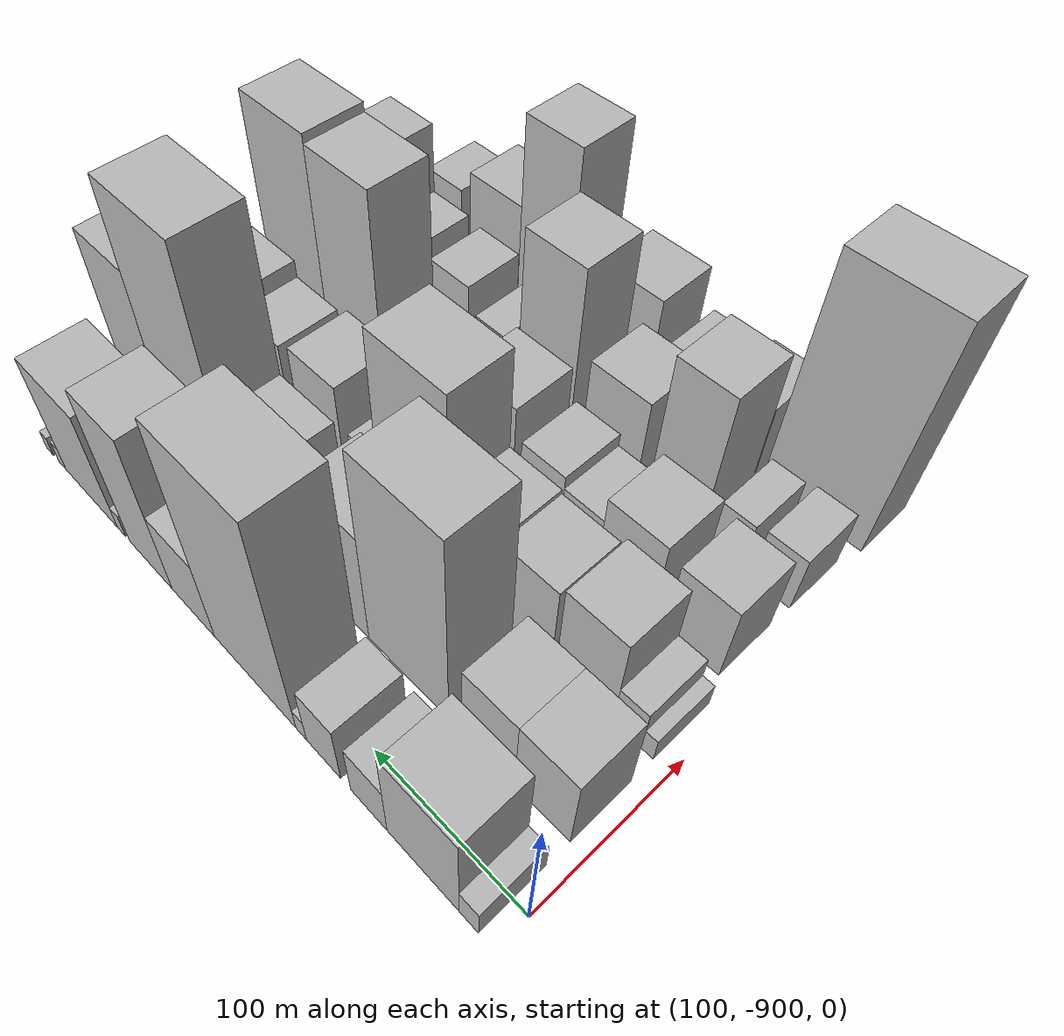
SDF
<sdf version="1.6">
 <world name="default">
  <model name="building_1">
   <static>1</static>
   <pose>100.0000 -884.0675 0 0.000000 0.000000 0.000000</pose>
   <link name="link">
    <pose>0 0 12.00 0 0 0</pose>
    <collision name="collision"><geometry><box><size>40.0000 11.8650 24.0000</size></box></geometry></collision>
    <visual name="visual">
     <cast_shadows>0</cast_shadows>
     <geometry><box><size>40.0000 11.8650 24.0000</size></box></geometry>
     <material>
      <script>
       <uri>model://HANNAS_wall/materials/scripts</uri>
       <uri>model://HANNAS_wall/materials/textures</uri>
       <name>vrc/HANNAS_wall</name>
      </script>
     </material>
    </visual>
   </link>
  </model>
  <model name="building_2">
   <static>1</static>
   <pose>100.0000 -854.9313 0 0.000000 0.000000 0.000000</pose>
   <link name="link">
    <pose>0 0 39.00 0 0 0</pose>
    <collision name="collision"><geometry><box><size>40.0000 46.4073 78.0000</size></box></geometry></collision>
    <visual name="visual">
     <cast_shadows>0</cast_shadows>
     <geometry><box><size>40.0000 46.4073 78.0000</size></box></geometry>
     <material>
      <script>
       <uri>model://HANNAS_wall/materials/scripts</uri>
       <uri>model://HANNAS_wall/materials/textures</uri>
       <name>vrc/HANNAS_wall</name>
      </script>
     </material>
    </visual>
   </link>
  </model>
  <model name="building_3">
   <static>1</static>
   <pose>100.0000 -819.1503 0 0.000000 0.000000 0.000000</pose>
   <link name="link">
    <pose>0 0 21.00 0 0 0</pose>
    <collision name="collision"><geometry><box><size>40.0000 25.1547 42.0000</size></box></geometry></collision>
    <visual name="visual">
     <cast_shadows>0</cast_shadows>
     <geometry><box><size>40.0000 25.1547 42.0000</size></box></geometry>
     <material>
      <script>
       <uri>model://HANNAS_wall/materials/scripts</uri>
       <uri>model://HANNAS_wall/materials/textures</uri>
       <name>vrc/HANNAS_wall</name>
      </script>
     </material>
    </visual>
   </link>
  </model>
  <model name="building_4">
   <static>1</static>
   <pose>100.0000 -787.0632 0 0.000000 0.000000 0.000000</pose>
   <link name="link">
    <pose>0 0 24.00 0 0 0</pose>
    <collision name="collision"><geometry><box><size>40.0000 25.0196 48.0000</size></box></geometry></collision>
    <visual name="visual">
     <cast_shadows>0</cast_shadows>
     <geometry><box><size>40.0000 25.0196 48.0000</size></box></geometry>
     <material>
      <script>
       <uri>model://HANNAS_wall/materials/scripts</uri>
       <uri>model://HANNAS_wall/materials/textures</uri>
       <name>vrc/HANNAS_wall</name>
      </script>
     </material>
    </visual>
   </link>
  </model>
  <model name="building_5">
   <static>1</static>
   <pose>100.0000 -770.5247 0 0.000000 0.000000 0.000000</pose>
   <link name="link">
    <pose>0 0 9.00 0 0 0</pose>
    <collision name="collision"><geometry><box><size>40.0000 8.0573 18.0000</size></box></geometry></collision>
    <visual name="visual">
     <cast_shadows>0</cast_shadows>
     <geometry><box><size>40.0000 8.0573 18.0000</size></box></geometry>
     <material>
      <script>
       <uri>model://HANNAS_wall/materials/scripts</uri>
       <uri>model://HANNAS_wall/materials/textures</uri>
       <name>vrc/HANNAS_wall</name>
      </script>
     </material>
    </visual>
   </link>
  </model>
  <model name="building_6">
   <static>1</static>
   <pose>100.0000 -733.8526 0 0.000000 0.000000 0.000000</pose>
   <link name="link">
    <pose>0 0 84.00 0 0 0</pose>
    <collision name="collision"><geometry><box><size>40.0000 65.2870 168.0000</size></box></geometry></collision>
    <visual name="visual">
     <cast_shadows>0</cast_shadows>
     <geometry><box><size>40.0000 65.2870 168.0000</size></box></geometry>
     <material>
      <script>
       <uri>model://HANNAS_wall/materials/scripts</uri>
       <uri>model://HANNAS_wall/materials/textures</uri>
       <name>vrc/HANNAS_wall</name>
      </script>
     </material>
    </visual>
   </link>
  </model>
  <model name="building_7">
   <static>1</static>
   <pose>100.0000 -682.5342 0 0.000000 0.000000 0.000000</pose>
   <link name="link">
    <pose>0 0 31.50 0 0 0</pose>
    <collision name="collision"><geometry><box><size>40.0000 37.3498 63.0000</size></box></geometry></collision>
    <visual name="visual">
     <cast_shadows>0</cast_shadows>
     <geometry><box><size>40.0000 37.3498 63.0000</size></box></geometry>
     <material>
      <script>
       <uri>model://HANNAS_wall/materials/scripts</uri>
       <uri>model://HANNAS_wall/materials/textures</uri>
       <name>vrc/HANNAS_wall</name>
      </script>
     </material>
    </visual>
   </link>
  </model>
  <model name="building_8">
   <static>1</static>
   <pose>100.0000 -643.9505 0 0.000000 0.000000 0.000000</pose>
   <link name="link">
    <pose>0 0 60.00 0 0 0</pose>
    <collision name="collision"><geometry><box><size>40.0000 39.8175 120.0000</size></box></geometry></collision>
    <visual name="visual">
     <cast_shadows>0</cast_shadows>
     <geometry><box><size>40.0000 39.8175 120.0000</size></box></geometry>
     <material>
      <script>
       <uri>model://HANNAS_wall/materials/scripts</uri>
       <uri>model://HANNAS_wall/materials/textures</uri>
       <name>vrc/HANNAS_wall</name>
      </script>
     </material>
    </visual>
   </link>
  </model>
  <model name="building_9">
   <static>1</static>
   <pose>100.0000 -616.0592 0 0.000000 0.000000 0.000000</pose>
   <link name="link">
    <pose>0 0 9.00 0 0 0</pose>
    <collision name="collision"><geometry><box><size>40.0000 7.9652 18.0000</size></box></geometry></collision>
    <visual name="visual">
     <cast_shadows>0</cast_shadows>
     <geometry><box><size>40.0000 7.9652 18.0000</size></box></geometry>
     <material>
      <script>
       <uri>model://HANNAS_wall/materials/scripts</uri>
       <uri>model://HANNAS_wall/materials/textures</uri>
       <name>vrc/HANNAS_wall</name>
      </script>
     </material>
    </visual>
   </link>
  </model>
  <model name="building_10">
   <static>1</static>
   <pose>100.0000 -585.8317 0 0.000000 0.000000 0.000000</pose>
   <link name="link">
    <pose>0 0 45.00 0 0 0</pose>
    <collision name="collision"><geometry><box><size>40.0000 52.4896 90.0000</size></box></geometry></collision>
    <visual name="visual">
     <cast_shadows>0</cast_shadows>
     <geometry><box><size>40.0000 52.4896 90.0000</size></box></geometry>
     <material>
      <script>
       <uri>model://HANNAS_wall/materials/scripts</uri>
       <uri>model://HANNAS_wall/materials/textures</uri>
       <name>vrc/HANNAS_wall</name>
      </script>
     </material>
    </visual>
   </link>
  </model>
  <model name="building_11">
   <static>1</static>
   <pose>100.0000 -555.8042 0 0.000000 0.000000 0.000000</pose>
   <link name="link">
    <pose>0 0 9.00 0 0 0</pose>
    <collision name="collision"><geometry><box><size>40.0000 7.5655 18.0000</size></box></geometry></collision>
    <visual name="visual">
     <cast_shadows>0</cast_shadows>
     <geometry><box><size>40.0000 7.5655 18.0000</size></box></geometry>
     <material>
      <script>
       <uri>model://HANNAS_wall/materials/scripts</uri>
       <uri>model://HANNAS_wall/materials/textures</uri>
       <name>vrc/HANNAS_wall</name>
      </script>
     </material>
    </visual>
   </link>
  </model>
  <model name="building_12">
   <static>1</static>
   <pose>100.0000 -542.4113 0 0.000000 0.000000 0.000000</pose>
   <link name="link">
    <pose>0 0 7.50 0 0 0</pose>
    <collision name="collision"><geometry><box><size>40.0000 7.2202 15.0000</size></box></geometry></collision>
    <visual name="visual">
     <cast_shadows>0</cast_shadows>
     <geometry><box><size>40.0000 7.2202 15.0000</size></box></geometry>
     <material>
      <script>
       <uri>model://HANNAS_wall/materials/scripts</uri>
       <uri>model://HANNAS_wall/materials/textures</uri>
       <name>vrc/HANNAS_wall</name>
      </script>
     </material>
    </visual>
   </link>
  </model>
  <model name="building_55">
   <static>1</static>
   <pose>155.0000 -872.7135 0 0.000000 0.000000 0.000000</pose>
   <link name="link">
    <pose>0 0 30.00 0 0 0</pose>
    <collision name="collision"><geometry><box><size>40.0000 34.5731 60.0000</size></box></geometry></collision>
    <visual name="visual">
     <cast_shadows>0</cast_shadows>
     <geometry><box><size>40.0000 34.5731 60.0000</size></box></geometry>
     <material>
      <script>
       <uri>model://HANNAS_wall/materials/scripts</uri>
       <uri>model://HANNAS_wall/materials/textures</uri>
       <name>vrc/HANNAS_wall</name>
      </script>
     </material>
    </visual>
   </link>
  </model>
  <model name="building_56">
   <static>1</static>
   <pose>155.0000 -838.1714 0 0.000000 0.000000 0.000000</pose>
   <link name="link">
    <pose>0 0 30.00 0 0 0</pose>
    <collision name="collision"><geometry><box><size>40.0000 34.5110 60.0000</size></box></geometry></collision>
    <visual name="visual">
     <cast_shadows>0</cast_shadows>
     <geometry><box><size>40.0000 34.5110 60.0000</size></box></geometry>
     <material>
      <script>
       <uri>model://HANNAS_wall/materials/scripts</uri>
       <uri>model://HANNAS_wall/materials/textures</uri>
       <name>vrc/HANNAS_wall</name>
      </script>
     </material>
    </visual>
   </link>
  </model>
  <model name="building_57">
   <static>1</static>
   <pose>155.0000 -782.7955 0 0.000000 0.000000 0.000000</pose>
   <link name="link">
    <pose>0 0 75.00 0 0 0</pose>
    <collision name="collision"><geometry><box><size>40.0000 58.2408 150.0000</size></box></geometry></collision>
    <visual name="visual">
     <cast_shadows>0</cast_shadows>
     <geometry><box><size>40.0000 58.2408 150.0000</size></box></geometry>
     <material>
      <script>
       <uri>model://HANNAS_wall/materials/scripts</uri>
       <uri>model://HANNAS_wall/materials/textures</uri>
       <name>vrc/HANNAS_wall</name>
      </script>
     </material>
    </visual>
   </link>
  </model>
  <model name="building_58">
   <static>1</static>
   <pose>155.0000 -731.3348 0 0.000000 0.000000 0.000000</pose>
   <link name="link">
    <pose>0 0 43.50 0 0 0</pose>
    <collision name="collision"><geometry><box><size>40.0000 44.6805 87.0000</size></box></geometry></collision>
    <visual name="visual">
     <cast_shadows>0</cast_shadows>
     <geometry><box><size>40.0000 44.6805 87.0000</size></box></geometry>
     <material>
      <script>
       <uri>model://HANNAS_wall/materials/scripts</uri>
       <uri>model://HANNAS_wall/materials/textures</uri>
       <name>vrc/HANNAS_wall</name>
      </script>
     </material>
    </visual>
   </link>
  </model>
  <model name="building_59">
   <static>1</static>
   <pose>155.0000 -700.2722 0 0.000000 0.000000 0.000000</pose>
   <link name="link">
    <pose>0 0 16.50 0 0 0</pose>
    <collision name="collision"><geometry><box><size>40.0000 17.4448 33.0000</size></box></geometry></collision>
    <visual name="visual">
     <cast_shadows>0</cast_shadows>
     <geometry><box><size>40.0000 17.4448 33.0000</size></box></geometry>
     <material>
      <script>
       <uri>model://HANNAS_wall/materials/scripts</uri>
       <uri>model://HANNAS_wall/materials/textures</uri>
       <name>vrc/HANNAS_wall</name>
      </script>
     </material>
    </visual>
   </link>
  </model>
  <model name="building_60">
   <static>1</static>
   <pose>155.0000 -666.0928 0 0.000000 0.000000 0.000000</pose>
   <link name="link">
    <pose>0 0 37.50 0 0 0</pose>
    <collision name="collision"><geometry><box><size>40.0000 42.9139 75.0000</size></box></geometry></collision>
    <visual name="visual">
     <cast_shadows>0</cast_shadows>
     <geometry><box><size>40.0000 42.9139 75.0000</size></box></geometry>
     <material>
      <script>
       <uri>model://HANNAS_wall/materials/scripts</uri>
       <uri>model://HANNAS_wall/materials/textures</uri>
       <name>vrc/HANNAS_wall</name>
      </script>
     </material>
    </visual>
   </link>
  </model>
  <model name="building_61">
   <static>1</static>
   <pose>155.0000 -614.7617 0 0.000000 0.000000 0.000000</pose>
   <link name="link">
    <pose>0 0 93.00 0 0 0</pose>
    <collision name="collision"><geometry><box><size>40.0000 59.7484 186.0000</size></box></geometry></collision>
    <visual name="visual">
     <cast_shadows>0</cast_shadows>
     <geometry><box><size>40.0000 59.7484 186.0000</size></box></geometry>
     <material>
      <script>
       <uri>model://HANNAS_wall/materials/scripts</uri>
       <uri>model://HANNAS_wall/materials/textures</uri>
       <name>vrc/HANNAS_wall</name>
      </script>
     </material>
    </visual>
   </link>
  </model>
  <model name="building_62">
   <static>1</static>
   <pose>155.0000 -563.2195 0 0.000000 0.000000 0.000000</pose>
   <link name="link">
    <pose>0 0 64.50 0 0 0</pose>
    <collision name="collision"><geometry><box><size>40.0000 43.3360 129.0000</size></box></geometry></collision>
    <visual name="visual">
     <cast_shadows>0</cast_shadows>
     <geometry><box><size>40.0000 43.3360 129.0000</size></box></geometry>
     <material>
      <script>
       <uri>model://HANNAS_wall/materials/scripts</uri>
       <uri>model://HANNAS_wall/materials/textures</uri>
       <name>vrc/HANNAS_wall</name>
      </script>
     </material>
    </visual>
   </link>
  </model>
  <model name="building_109">
   <static>1</static>
   <pose>210.0000 -886.3223 0 0.000000 0.000000 0.000000</pose>
   <link name="link">
    <pose>0 0 9.00 0 0 0</pose>
    <collision name="collision"><geometry><box><size>40.0000 7.3554 18.0000</size></box></geometry></collision>
    <visual name="visual">
     <cast_shadows>0</cast_shadows>
     <geometry><box><size>40.0000 7.3554 18.0000</size></box></geometry>
     <material>
      <script>
       <uri>model://HANNAS_wall/materials/scripts</uri>
       <uri>model://HANNAS_wall/materials/textures</uri>
       <name>vrc/HANNAS_wall</name>
      </script>
     </material>
    </visual>
   </link>
  </model>
  <model name="building_110">
   <static>1</static>
   <pose>210.0000 -873.9522 0 0.000000 0.000000 0.000000</pose>
   <link name="link">
    <pose>0 0 16.50 0 0 0</pose>
    <collision name="collision"><geometry><box><size>40.0000 17.3848 33.0000</size></box></geometry></collision>
    <visual name="visual">
     <cast_shadows>0</cast_shadows>
     <geometry><box><size>40.0000 17.3848 33.0000</size></box></geometry>
     <material>
      <script>
       <uri>model://HANNAS_wall/materials/scripts</uri>
       <uri>model://HANNAS_wall/materials/textures</uri>
       <name>vrc/HANNAS_wall</name>
      </script>
     </material>
    </visual>
   </link>
  </model>
  <model name="building_111">
   <static>1</static>
   <pose>210.0000 -846.6720 0 0.000000 0.000000 0.000000</pose>
   <link name="link">
    <pose>0 0 36.00 0 0 0</pose>
    <collision name="collision"><geometry><box><size>40.0000 37.1756 72.0000</size></box></geometry></collision>
    <visual name="visual">
     <cast_shadows>0</cast_shadows>
     <geometry><box><size>40.0000 37.1756 72.0000</size></box></geometry>
     <material>
      <script>
       <uri>model://HANNAS_wall/materials/scripts</uri>
       <uri>model://HANNAS_wall/materials/textures</uri>
       <name>vrc/HANNAS_wall</name>
      </script>
     </material>
    </visual>
   </link>
  </model>
  <model name="building_112">
   <static>1</static>
   <pose>210.0000 -806.5384 0 0.000000 0.000000 0.000000</pose>
   <link name="link">
    <pose>0 0 33.00 0 0 0</pose>
    <collision name="collision"><geometry><box><size>40.0000 37.0917 66.0000</size></box></geometry></collision>
    <visual name="visual">
     <cast_shadows>0</cast_shadows>
     <geometry><box><size>40.0000 37.0917 66.0000</size></box></geometry>
     <material>
      <script>
       <uri>model://HANNAS_wall/materials/scripts</uri>
       <uri>model://HANNAS_wall/materials/textures</uri>
       <name>vrc/HANNAS_wall</name>
      </script>
     </material>
    </visual>
   </link>
  </model>
  <model name="building_113">
   <static>1</static>
   <pose>210.0000 -770.4524 0 0.000000 0.000000 0.000000</pose>
   <link name="link">
    <pose>0 0 34.50 0 0 0</pose>
    <collision name="collision"><geometry><box><size>40.0000 35.0803 69.0000</size></box></geometry></collision>
    <visual name="visual">
     <cast_shadows>0</cast_shadows>
     <geometry><box><size>40.0000 35.0803 69.0000</size></box></geometry>
     <material>
      <script>
       <uri>model://HANNAS_wall/materials/scripts</uri>
       <uri>model://HANNAS_wall/materials/textures</uri>
       <name>vrc/HANNAS_wall</name>
      </script>
     </material>
    </visual>
   </link>
  </model>
  <model name="building_114">
   <static>1</static>
   <pose>210.0000 -725.4736 0 0.000000 0.000000 0.000000</pose>
   <link name="link">
    <pose>0 0 69.00 0 0 0</pose>
    <collision name="collision"><geometry><box><size>40.0000 54.8773 138.0000</size></box></geometry></collision>
    <visual name="visual">
     <cast_shadows>0</cast_shadows>
     <geometry><box><size>40.0000 54.8773 138.0000</size></box></geometry>
     <material>
      <script>
       <uri>model://HANNAS_wall/materials/scripts</uri>
       <uri>model://HANNAS_wall/materials/textures</uri>
       <name>vrc/HANNAS_wall</name>
      </script>
     </material>
    </visual>
   </link>
  </model>
  <model name="building_115">
   <static>1</static>
   <pose>210.0000 -686.5133 0 0.000000 0.000000 0.000000</pose>
   <link name="link">
    <pose>0 0 21.00 0 0 0</pose>
    <collision name="collision"><geometry><box><size>40.0000 23.0432 42.0000</size></box></geometry></collision>
    <visual name="visual">
     <cast_shadows>0</cast_shadows>
     <geometry><box><size>40.0000 23.0432 42.0000</size></box></geometry>
     <material>
      <script>
       <uri>model://HANNAS_wall/materials/scripts</uri>
       <uri>model://HANNAS_wall/materials/textures</uri>
       <name>vrc/HANNAS_wall</name>
      </script>
     </material>
    </visual>
   </link>
  </model>
  <model name="building_116">
   <static>1</static>
   <pose>210.0000 -648.8046 0 0.000000 0.000000 0.000000</pose>
   <link name="link">
    <pose>0 0 36.00 0 0 0</pose>
    <collision name="collision"><geometry><box><size>40.0000 38.3742 72.0000</size></box></geometry></collision>
    <visual name="visual">
     <cast_shadows>0</cast_shadows>
     <geometry><box><size>40.0000 38.3742 72.0000</size></box></geometry>
     <material>
      <script>
       <uri>model://HANNAS_wall/materials/scripts</uri>
       <uri>model://HANNAS_wall/materials/textures</uri>
       <name>vrc/HANNAS_wall</name>
      </script>
     </material>
    </visual>
   </link>
  </model>
  <model name="building_117">
   <static>1</static>
   <pose>210.0000 -602.9637 0 0.000000 0.000000 0.000000</pose>
   <link name="link">
    <pose>0 0 33.00 0 0 0</pose>
    <collision name="collision"><geometry><box><size>40.0000 35.3075 66.0000</size></box></geometry></collision>
    <visual name="visual">
     <cast_shadows>0</cast_shadows>
     <geometry><box><size>40.0000 35.3075 66.0000</size></box></geometry>
     <material>
      <script>
       <uri>model://HANNAS_wall/materials/scripts</uri>
       <uri>model://HANNAS_wall/materials/textures</uri>
       <name>vrc/HANNAS_wall</name>
      </script>
     </material>
    </visual>
   </link>
  </model>
  <model name="building_118">
   <static>1</static>
   <pose>210.0000 -562.2938 0 0.000000 0.000000 0.000000</pose>
   <link name="link">
    <pose>0 0 39.00 0 0 0</pose>
    <collision name="collision"><geometry><box><size>40.0000 46.0322 78.0000</size></box></geometry></collision>
    <visual name="visual">
     <cast_shadows>0</cast_shadows>
     <geometry><box><size>40.0000 46.0322 78.0000</size></box></geometry>
     <material>
      <script>
       <uri>model://HANNAS_wall/materials/scripts</uri>
       <uri>model://HANNAS_wall/materials/textures</uri>
       <name>vrc/HANNAS_wall</name>
      </script>
     </material>
    </visual>
   </link>
  </model>
  <model name="building_159">
   <static>1</static>
   <pose>265.0000 -866.9150 0 0.000000 0.000000 0.000000</pose>
   <link name="link">
    <pose>0 0 28.50 0 0 0</pose>
    <collision name="collision"><geometry><box><size>40.0000 34.1699 57.0000</size></box></geometry></collision>
    <visual name="visual">
     <cast_shadows>0</cast_shadows>
     <geometry><box><size>40.0000 34.1699 57.0000</size></box></geometry>
     <material>
      <script>
       <uri>model://HANNAS_wall/materials/scripts</uri>
       <uri>model://HANNAS_wall/materials/textures</uri>
       <name>vrc/HANNAS_wall</name>
      </script>
     </material>
    </visual>
   </link>
  </model>
  <model name="building_160">
   <static>1</static>
   <pose>265.0000 -845.6897 0 0.000000 0.000000 0.000000</pose>
   <link name="link">
    <pose>0 0 9.00 0 0 0</pose>
    <collision name="collision"><geometry><box><size>40.0000 8.2808 18.0000</size></box></geometry></collision>
    <visual name="visual">
     <cast_shadows>0</cast_shadows>
     <geometry><box><size>40.0000 8.2808 18.0000</size></box></geometry>
     <material>
      <script>
       <uri>model://HANNAS_wall/materials/scripts</uri>
       <uri>model://HANNAS_wall/materials/textures</uri>
       <name>vrc/HANNAS_wall</name>
      </script>
     </material>
    </visual>
   </link>
  </model>
  <model name="building_161">
   <static>1</static>
   <pose>265.0000 -822.6998 0 0.000000 0.000000 0.000000</pose>
   <link name="link">
    <pose>0 0 31.50 0 0 0</pose>
    <collision name="collision"><geometry><box><size>40.0000 37.6989 63.0000</size></box></geometry></collision>
    <visual name="visual">
     <cast_shadows>0</cast_shadows>
     <geometry><box><size>40.0000 37.6989 63.0000</size></box></geometry>
     <material>
      <script>
       <uri>model://HANNAS_wall/materials/scripts</uri>
       <uri>model://HANNAS_wall/materials/textures</uri>
       <name>vrc/HANNAS_wall</name>
      </script>
     </material>
    </visual>
   </link>
  </model>
  <model name="building_162">
   <static>1</static>
   <pose>265.0000 -790.4705 0 0.000000 0.000000 0.000000</pose>
   <link name="link">
    <pose>0 0 22.50 0 0 0</pose>
    <collision name="collision"><geometry><box><size>40.0000 26.7598 45.0000</size></box></geometry></collision>
    <visual name="visual">
     <cast_shadows>0</cast_shadows>
     <geometry><box><size>40.0000 26.7598 45.0000</size></box></geometry>
     <material>
      <script>
       <uri>model://HANNAS_wall/materials/scripts</uri>
       <uri>model://HANNAS_wall/materials/textures</uri>
       <name>vrc/HANNAS_wall</name>
      </script>
     </material>
    </visual>
   </link>
  </model>
  <model name="building_163">
   <static>1</static>
   <pose>265.0000 -762.0236 0 0.000000 0.000000 0.000000</pose>
   <link name="link">
    <pose>0 0 27.00 0 0 0</pose>
    <collision name="collision"><geometry><box><size>40.0000 30.1339 54.0000</size></box></geometry></collision>
    <visual name="visual">
     <cast_shadows>0</cast_shadows>
     <geometry><box><size>40.0000 30.1339 54.0000</size></box></geometry>
     <material>
      <script>
       <uri>model://HANNAS_wall/materials/scripts</uri>
       <uri>model://HANNAS_wall/materials/textures</uri>
       <name>vrc/HANNAS_wall</name>
      </script>
     </material>
    </visual>
   </link>
  </model>
  <model name="building_164">
   <static>1</static>
   <pose>265.0000 -722.0205 0 0.000000 0.000000 0.000000</pose>
   <link name="link">
    <pose>0 0 37.50 0 0 0</pose>
    <collision name="collision"><geometry><box><size>40.0000 39.8722 75.0000</size></box></geometry></collision>
    <visual name="visual">
     <cast_shadows>0</cast_shadows>
     <geometry><box><size>40.0000 39.8722 75.0000</size></box></geometry>
     <material>
      <script>
       <uri>model://HANNAS_wall/materials/scripts</uri>
       <uri>model://HANNAS_wall/materials/textures</uri>
       <name>vrc/HANNAS_wall</name>
      </script>
     </material>
    </visual>
   </link>
  </model>
  <model name="building_165">
   <static>1</static>
   <pose>265.0000 -697.6294 0 0.000000 0.000000 0.000000</pose>
   <link name="link">
    <pose>0 0 9.00 0 0 0</pose>
    <collision name="collision"><geometry><box><size>40.0000 8.9101 18.0000</size></box></geometry></collision>
    <visual name="visual">
     <cast_shadows>0</cast_shadows>
     <geometry><box><size>40.0000 8.9101 18.0000</size></box></geometry>
     <material>
      <script>
       <uri>model://HANNAS_wall/materials/scripts</uri>
       <uri>model://HANNAS_wall/materials/textures</uri>
       <name>vrc/HANNAS_wall</name>
      </script>
     </material>
    </visual>
   </link>
  </model>
  <model name="building_166">
   <static>1</static>
   <pose>265.0000 -676.6406 0 0.000000 0.000000 0.000000</pose>
   <link name="link">
    <pose>0 0 21.00 0 0 0</pose>
    <collision name="collision"><geometry><box><size>40.0000 25.0674 42.0000</size></box></geometry></collision>
    <visual name="visual">
     <cast_shadows>0</cast_shadows>
     <geometry><box><size>40.0000 25.0674 42.0000</size></box></geometry>
     <material>
      <script>
       <uri>model://HANNAS_wall/materials/scripts</uri>
       <uri>model://HANNAS_wall/materials/textures</uri>
       <name>vrc/HANNAS_wall</name>
      </script>
     </material>
    </visual>
   </link>
  </model>
  <model name="building_167">
   <static>1</static>
   <pose>265.0000 -650.1250 0 0.000000 0.000000 0.000000</pose>
   <link name="link">
    <pose>0 0 25.50 0 0 0</pose>
    <collision name="collision"><geometry><box><size>40.0000 27.9639 51.0000</size></box></geometry></collision>
    <visual name="visual">
     <cast_shadows>0</cast_shadows>
     <geometry><box><size>40.0000 27.9639 51.0000</size></box></geometry>
     <material>
      <script>
       <uri>model://HANNAS_wall/materials/scripts</uri>
       <uri>model://HANNAS_wall/materials/textures</uri>
       <name>vrc/HANNAS_wall</name>
      </script>
     </material>
    </visual>
   </link>
  </model>
  <model name="building_168">
   <static>1</static>
   <pose>265.0000 -611.2651 0 0.000000 0.000000 0.000000</pose>
   <link name="link">
    <pose>0 0 73.50 0 0 0</pose>
    <collision name="collision"><geometry><box><size>40.0000 49.7558 147.0000</size></box></geometry></collision>
    <visual name="visual">
     <cast_shadows>0</cast_shadows>
     <geometry><box><size>40.0000 49.7558 147.0000</size></box></geometry>
     <material>
      <script>
       <uri>model://HANNAS_wall/materials/scripts</uri>
       <uri>model://HANNAS_wall/materials/textures</uri>
       <name>vrc/HANNAS_wall</name>
      </script>
     </material>
    </visual>
   </link>
  </model>
  <model name="building_169">
   <static>1</static>
   <pose>265.0000 -559.7016 0 0.000000 0.000000 0.000000</pose>
   <link name="link">
    <pose>0 0 76.50 0 0 0</pose>
    <collision name="collision"><geometry><box><size>40.0000 53.3711 153.0000</size></box></geometry></collision>
    <visual name="visual">
     <cast_shadows>0</cast_shadows>
     <geometry><box><size>40.0000 53.3711 153.0000</size></box></geometry>
     <material>
      <script>
       <uri>model://HANNAS_wall/materials/scripts</uri>
       <uri>model://HANNAS_wall/materials/textures</uri>
       <name>vrc/HANNAS_wall</name>
      </script>
     </material>
    </visual>
   </link>
  </model>
  <model name="building_211">
   <static>1</static>
   <pose>320.0000 -872.8542 0 0.000000 0.000000 0.000000</pose>
   <link name="link">
    <pose>0 0 21.00 0 0 0</pose>
    <collision name="collision"><geometry><box><size>40.0000 24.2916 42.0000</size></box></geometry></collision>
    <visual name="visual">
     <cast_shadows>0</cast_shadows>
     <geometry><box><size>40.0000 24.2916 42.0000</size></box></geometry>
     <material>
      <script>
       <uri>model://HANNAS_wall/materials/scripts</uri>
       <uri>model://HANNAS_wall/materials/textures</uri>
       <name>vrc/HANNAS_wall</name>
      </script>
     </material>
    </visual>
   </link>
  </model>
  <model name="building_212">
   <static>1</static>
   <pose>320.0000 -844.3531 0 0.000000 0.000000 0.000000</pose>
   <link name="link">
    <pose>0 0 19.50 0 0 0</pose>
    <collision name="collision"><geometry><box><size>40.0000 20.7107 39.0000</size></box></geometry></collision>
    <visual name="visual">
     <cast_shadows>0</cast_shadows>
     <geometry><box><size>40.0000 20.7107 39.0000</size></box></geometry>
     <material>
      <script>
       <uri>model://HANNAS_wall/materials/scripts</uri>
       <uri>model://HANNAS_wall/materials/textures</uri>
       <name>vrc/HANNAS_wall</name>
      </script>
     </material>
    </visual>
   </link>
  </model>
  <model name="building_213">
   <static>1</static>
   <pose>320.0000 -808.6454 0 0.000000 0.000000 0.000000</pose>
   <link name="link">
    <pose>0 0 55.50 0 0 0</pose>
    <collision name="collision"><geometry><box><size>40.0000 36.7046 111.0000</size></box></geometry></collision>
    <visual name="visual">
     <cast_shadows>0</cast_shadows>
     <geometry><box><size>40.0000 36.7046 111.0000</size></box></geometry>
     <material>
      <script>
       <uri>model://HANNAS_wall/materials/scripts</uri>
       <uri>model://HANNAS_wall/materials/textures</uri>
       <name>vrc/HANNAS_wall</name>
      </script>
     </material>
    </visual>
   </link>
  </model>
  <model name="building_214">
   <static>1</static>
   <pose>320.0000 -761.8670 0 0.000000 0.000000 0.000000</pose>
   <link name="link">
    <pose>0 0 34.50 0 0 0</pose>
    <collision name="collision"><geometry><box><size>40.0000 40.8522 69.0000</size></box></geometry></collision>
    <visual name="visual">
     <cast_shadows>0</cast_shadows>
     <geometry><box><size>40.0000 40.8522 69.0000</size></box></geometry>
     <material>
      <script>
       <uri>model://HANNAS_wall/materials/scripts</uri>
       <uri>model://HANNAS_wall/materials/textures</uri>
       <name>vrc/HANNAS_wall</name>
      </script>
     </material>
    </visual>
   </link>
  </model>
  <model name="building_215">
   <static>1</static>
   <pose>320.0000 -711.3551 0 0.000000 0.000000 0.000000</pose>
   <link name="link">
    <pose>0 0 63.00 0 0 0</pose>
    <collision name="collision"><geometry><box><size>40.0000 42.1716 126.0000</size></box></geometry></collision>
    <visual name="visual">
     <cast_shadows>0</cast_shadows>
     <geometry><box><size>40.0000 42.1716 126.0000</size></box></geometry>
     <material>
      <script>
       <uri>model://HANNAS_wall/materials/scripts</uri>
       <uri>model://HANNAS_wall/materials/textures</uri>
       <name>vrc/HANNAS_wall</name>
      </script>
     </material>
    </visual>
   </link>
  </model>
  <model name="building_216">
   <static>1</static>
   <pose>320.0000 -684.3544 0 0.000000 0.000000 0.000000</pose>
   <link name="link">
    <pose>0 0 12.00 0 0 0</pose>
    <collision name="collision"><geometry><box><size>40.0000 11.8299 24.0000</size></box></geometry></collision>
    <visual name="visual">
     <cast_shadows>0</cast_shadows>
     <geometry><box><size>40.0000 11.8299 24.0000</size></box></geometry>
     <material>
      <script>
       <uri>model://HANNAS_wall/materials/scripts</uri>
       <uri>model://HANNAS_wall/materials/textures</uri>
       <name>vrc/HANNAS_wall</name>
      </script>
     </material>
    </visual>
   </link>
  </model>
  <model name="building_217">
   <static>1</static>
   <pose>320.0000 -666.7759 0 0.000000 0.000000 0.000000</pose>
   <link name="link">
    <pose>0 0 19.50 0 0 0</pose>
    <collision name="collision"><geometry><box><size>40.0000 23.3271 39.0000</size></box></geometry></collision>
    <visual name="visual">
     <cast_shadows>0</cast_shadows>
     <geometry><box><size>40.0000 23.3271 39.0000</size></box></geometry>
     <material>
      <script>
       <uri>model://HANNAS_wall/materials/scripts</uri>
       <uri>model://HANNAS_wall/materials/textures</uri>
       <name>vrc/HANNAS_wall</name>
      </script>
     </material>
    </visual>
   </link>
  </model>
  <model name="building_218">
   <static>1</static>
   <pose>320.0000 -632.9585 0 0.000000 0.000000 0.000000</pose>
   <link name="link">
    <pose>0 0 28.50 0 0 0</pose>
    <collision name="collision"><geometry><box><size>40.0000 32.3077 57.0000</size></box></geometry></collision>
    <visual name="visual">
     <cast_shadows>0</cast_shadows>
     <geometry><box><size>40.0000 32.3077 57.0000</size></box></geometry>
     <material>
      <script>
       <uri>model://HANNAS_wall/materials/scripts</uri>
       <uri>model://HANNAS_wall/materials/textures</uri>
       <name>vrc/HANNAS_wall</name>
      </script>
     </material>
    </visual>
   </link>
  </model>
  <model name="building_219">
   <static>1</static>
   <pose>320.0000 -591.5608 0 0.000000 0.000000 0.000000</pose>
   <link name="link">
    <pose>0 0 30.00 0 0 0</pose>
    <collision name="collision"><geometry><box><size>40.0000 30.4877 60.0000</size></box></geometry></collision>
    <visual name="visual">
     <cast_shadows>0</cast_shadows>
     <geometry><box><size>40.0000 30.4877 60.0000</size></box></geometry>
     <material>
      <script>
       <uri>model://HANNAS_wall/materials/scripts</uri>
       <uri>model://HANNAS_wall/materials/textures</uri>
       <name>vrc/HANNAS_wall</name>
      </script>
     </material>
    </visual>
   </link>
  </model>
  <model name="building_220">
   <static>1</static>
   <pose>320.0000 -558.0673 0 0.000000 0.000000 0.000000</pose>
   <link name="link">
    <pose>0 0 54.00 0 0 0</pose>
    <collision name="collision"><geometry><box><size>40.0000 36.4993 108.0000</size></box></geometry></collision>
    <visual name="visual">
     <cast_shadows>0</cast_shadows>
     <geometry><box><size>40.0000 36.4993 108.0000</size></box></geometry>
     <material>
      <script>
       <uri>model://HANNAS_wall/materials/scripts</uri>
       <uri>model://HANNAS_wall/materials/textures</uri>
       <name>vrc/HANNAS_wall</name>
      </script>
     </material>
    </visual>
   </link>
  </model>
  <model name="building_260">
   <static>1</static>
   <pose>375.0000 -857.9734 0 0.000000 0.000000 0.000000</pose>
   <link name="link">
    <pose>0 0 84.00 0 0 0</pose>
    <collision name="collision"><geometry><box><size>40.0000 64.0532 168.0000</size></box></geometry></collision>
    <visual name="visual">
     <cast_shadows>0</cast_shadows>
     <geometry><box><size>40.0000 64.0532 168.0000</size></box></geometry>
     <material>
      <script>
       <uri>model://HANNAS_wall/materials/scripts</uri>
       <uri>model://HANNAS_wall/materials/textures</uri>
       <name>vrc/HANNAS_wall</name>
      </script>
     </material>
    </visual>
   </link>
  </model>
  <model name="building_261">
   <static>1</static>
   <pose>375.0000 -805.3754 0 0.000000 0.000000 0.000000</pose>
   <link name="link">
    <pose>0 0 27.00 0 0 0</pose>
    <collision name="collision"><geometry><box><size>40.0000 31.1428 54.0000</size></box></geometry></collision>
    <visual name="visual">
     <cast_shadows>0</cast_shadows>
     <geometry><box><size>40.0000 31.1428 54.0000</size></box></geometry>
     <material>
      <script>
       <uri>model://HANNAS_wall/materials/scripts</uri>
       <uri>model://HANNAS_wall/materials/textures</uri>
       <name>vrc/HANNAS_wall</name>
      </script>
     </material>
    </visual>
   </link>
  </model>
  <model name="building_262">
   <static>1</static>
   <pose>375.0000 -781.4120 0 0.000000 0.000000 0.000000</pose>
   <link name="link">
    <pose>0 0 10.50 0 0 0</pose>
    <collision name="collision"><geometry><box><size>40.0000 8.7841 21.0000</size></box></geometry></collision>
    <visual name="visual">
     <cast_shadows>0</cast_shadows>
     <geometry><box><size>40.0000 8.7841 21.0000</size></box></geometry>
     <material>
      <script>
       <uri>model://HANNAS_wall/materials/scripts</uri>
       <uri>model://HANNAS_wall/materials/textures</uri>
       <name>vrc/HANNAS_wall</name>
      </script>
     </material>
    </visual>
   </link>
  </model>
  <model name="building_263">
   <static>1</static>
   <pose>375.0000 -763.5123 0 0.000000 0.000000 0.000000</pose>
   <link name="link">
    <pose>0 0 24.00 0 0 0</pose>
    <collision name="collision"><geometry><box><size>40.0000 27.0153 48.0000</size></box></geometry></collision>
    <visual name="visual">
     <cast_shadows>0</cast_shadows>
     <geometry><box><size>40.0000 27.0153 48.0000</size></box></geometry>
     <material>
      <script>
       <uri>model://HANNAS_wall/materials/scripts</uri>
       <uri>model://HANNAS_wall/materials/textures</uri>
       <name>vrc/HANNAS_wall</name>
      </script>
     </material>
    </visual>
   </link>
  </model>
  <model name="building_264">
   <static>1</static>
   <pose>375.0000 -720.8931 0 0.000000 0.000000 0.000000</pose>
   <link name="link">
    <pose>0 0 37.50 0 0 0</pose>
    <collision name="collision"><geometry><box><size>40.0000 42.2230 75.0000</size></box></geometry></collision>
    <visual name="visual">
     <cast_shadows>0</cast_shadows>
     <geometry><box><size>40.0000 42.2230 75.0000</size></box></geometry>
     <material>
      <script>
       <uri>model://HANNAS_wall/materials/scripts</uri>
       <uri>model://HANNAS_wall/materials/textures</uri>
       <name>vrc/HANNAS_wall</name>
      </script>
     </material>
    </visual>
   </link>
  </model>
  <model name="building_265">
   <static>1</static>
   <pose>375.0000 -691.9595 0 0.000000 0.000000 0.000000</pose>
   <link name="link">
    <pose>0 0 15.00 0 0 0</pose>
    <collision name="collision"><geometry><box><size>40.0000 15.6442 30.0000</size></box></geometry></collision>
    <visual name="visual">
     <cast_shadows>0</cast_shadows>
     <geometry><box><size>40.0000 15.6442 30.0000</size></box></geometry>
     <material>
      <script>
       <uri>model://HANNAS_wall/materials/scripts</uri>
       <uri>model://HANNAS_wall/materials/textures</uri>
       <name>vrc/HANNAS_wall</name>
      </script>
     </material>
    </visual>
   </link>
  </model>
  <model name="building_266">
   <static>1</static>
   <pose>375.0000 -656.2068 0 0.000000 0.000000 0.000000</pose>
   <link name="link">
    <pose>0 0 69.00 0 0 0</pose>
    <collision name="collision"><geometry><box><size>40.0000 41.8612 138.0000</size></box></geometry></collision>
    <visual name="visual">
     <cast_shadows>0</cast_shadows>
     <geometry><box><size>40.0000 41.8612 138.0000</size></box></geometry>
     <material>
      <script>
       <uri>model://HANNAS_wall/materials/scripts</uri>
       <uri>model://HANNAS_wall/materials/textures</uri>
       <name>vrc/HANNAS_wall</name>
      </script>
     </material>
    </visual>
   </link>
  </model>
  <model name="building_267">
   <static>1</static>
   <pose>375.0000 -613.7316 0 0.000000 0.000000 0.000000</pose>
   <link name="link">
    <pose>0 0 37.50 0 0 0</pose>
    <collision name="collision"><geometry><box><size>40.0000 43.0893 75.0000</size></box></geometry></collision>
    <visual name="visual">
     <cast_shadows>0</cast_shadows>
     <geometry><box><size>40.0000 43.0893 75.0000</size></box></geometry>
     <material>
      <script>
       <uri>model://HANNAS_wall/materials/scripts</uri>
       <uri>model://HANNAS_wall/materials/textures</uri>
       <name>vrc/HANNAS_wall</name>
      </script>
     </material>
    </visual>
   </link>
  </model>
  <model name="building_268">
   <static>1</static>
   <pose>375.0000 -568.9751 0 0.000000 0.000000 0.000000</pose>
   <link name="link">
    <pose>0 0 28.50 0 0 0</pose>
    <collision name="collision"><geometry><box><size>40.0000 30.4237 57.0000</size></box></geometry></collision>
    <visual name="visual">
     <cast_shadows>0</cast_shadows>
     <geometry><box><size>40.0000 30.4237 57.0000</size></box></geometry>
     <material>
      <script>
       <uri>model://HANNAS_wall/materials/scripts</uri>
       <uri>model://HANNAS_wall/materials/textures</uri>
       <name>vrc/HANNAS_wall</name>
      </script>
     </material>
    </visual>
   </link>
  </model>
  <model name="building_269">
   <static>1</static>
   <pose>375.0000 -547.4805 0 0.000000 0.000000 0.000000</pose>
   <link name="link">
    <pose>0 0 13.50 0 0 0</pose>
    <collision name="collision"><geometry><box><size>40.0000 12.5653 27.0000</size></box></geometry></collision>
    <visual name="visual">
     <cast_shadows>0</cast_shadows>
     <geometry><box><size>40.0000 12.5653 27.0000</size></box></geometry>
     <material>
      <script>
       <uri>model://HANNAS_wall/materials/scripts</uri>
       <uri>model://HANNAS_wall/materials/textures</uri>
       <name>vrc/HANNAS_wall</name>
      </script>
     </material>
    </visual>
   </link>
  </model>
 </world>
</sdf>
